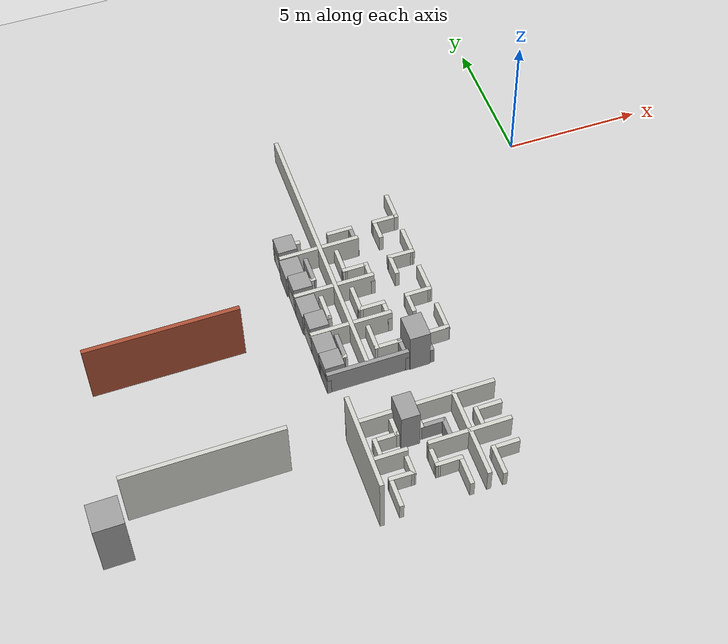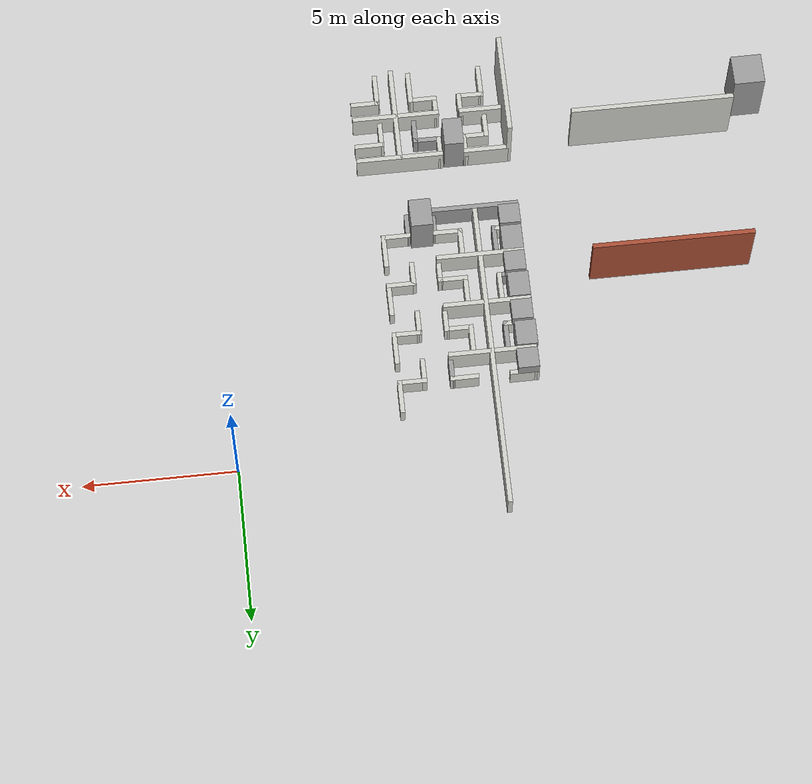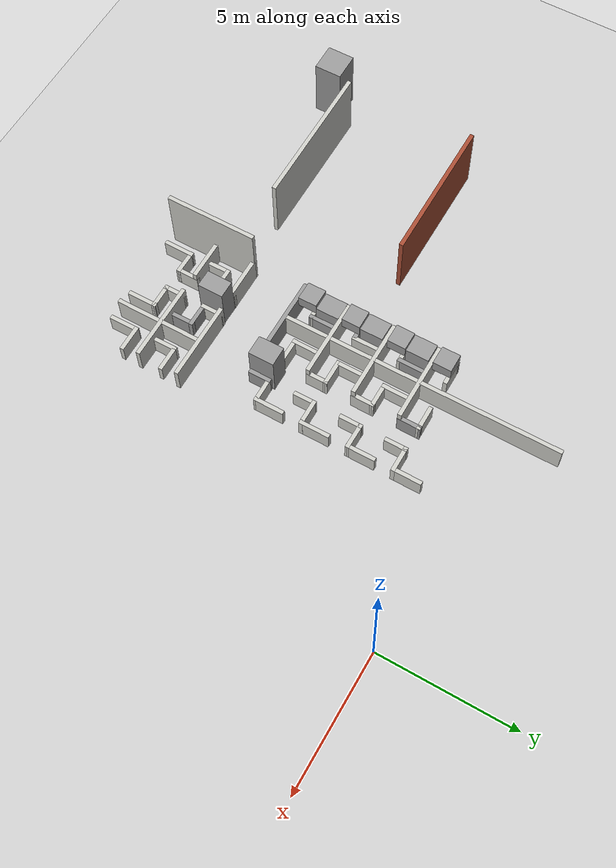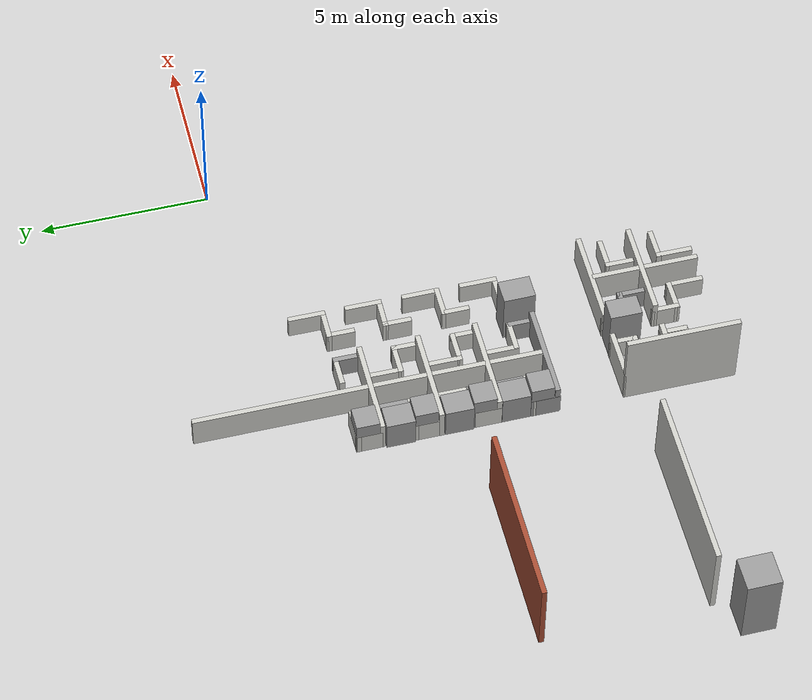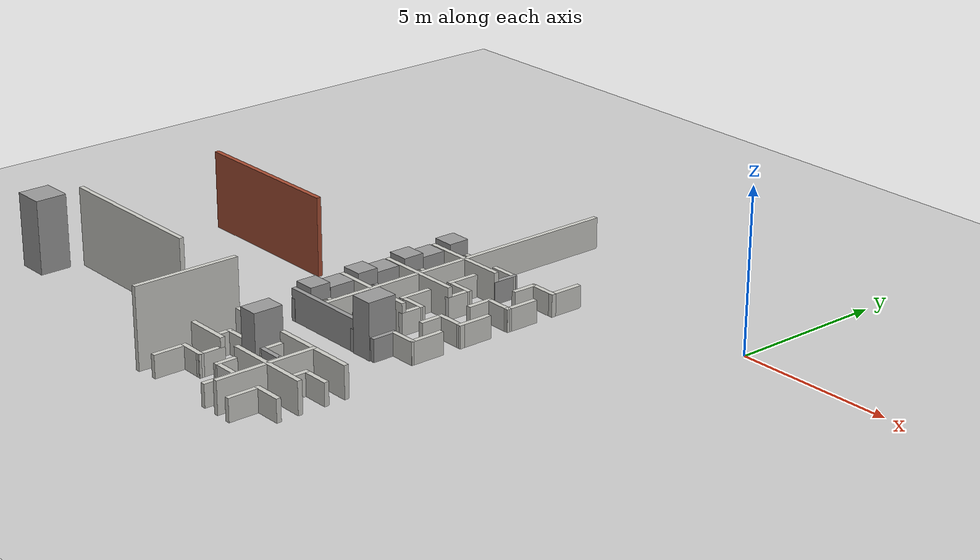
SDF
<sdf version="1.7">
 <world name="default">
  <model name="ground_plane">
   <static>1</static>
   <link name="link">
    <collision name="collision">
     <geometry><plane><normal>0 0 1</normal><size>100 100</size></plane></geometry>
     <surface><friction><ode><mu>100</mu><mu2>50</mu2></ode></friction></surface>
    </collision>
    <visual name="visual">
     <cast_shadows>0</cast_shadows>
     <geometry><plane><normal>0 0 1</normal><size>100 100</size></plane></geometry>
     <material>
      <script><uri>file://media/materials/scripts/gazebo.material</uri><name>Gazebo/Grey</name></script>
     </material>
    </visual>
   </link>
  </model>
  <model name="batclab">
   <pose>-2.42536 -0.386876 0 0 -0 0</pose>
   <link name="Wall_102">
    <collision name="Wall_102_Collision">
     <geometry><box><size>2.865 0.15 1</size></box></geometry>
     <pose>0 0 0.5 0 -0 0</pose>
    </collision>
    <visual name="Wall_102_Visual">
     <pose>0 0 0.5 0 -0 0</pose>
     <geometry><box><size>2.865 0.15 1</size></box></geometry>
     <material>
      <script><uri>file://media/materials/scripts/gazebo.material</uri><name>Gazebo/Grey</name></script>
      <ambient>1 1 1 1</ambient>
     </material>
     <meta><layer>0</layer></meta>
    </visual>
    <pose>-6.02592 -7.66961 0 0 -0 0</pose>
   </link>
   <link name="Wall_108">
    <collision name="Wall_108_Collision">
     <geometry><box><size>1.11648 0.15 0.7</size></box></geometry>
     <pose>0 0 0.35 0 -0 0</pose>
    </collision>
    <visual name="Wall_108_Visual">
     <pose>0 0 0.35 0 -0 0</pose>
     <geometry><box><size>1.11648 0.15 0.7</size></box></geometry>
     <material>
      <script><uri>file://media/materials/scripts/gazebo.material</uri><name>Gazebo/CeilingTiled</name></script>
      <ambient>1 1 1 1</ambient>
     </material>
     <meta><layer>0</layer></meta>
    </visual>
    <pose>-6.58842 -4.81161 0 0 -0 -1.5708</pose>
   </link>
   <link name="Wall_109">
    <collision name="Wall_109_Collision">
     <geometry><box><size>0.954505 0.15 0.7</size></box></geometry>
     <pose>0 0 0.35 0 -0 0</pose>
    </collision>
    <visual name="Wall_109_Visual">
     <pose>0 0 0.35 0 -0 0</pose>
     <geometry><box><size>0.954505 0.15 0.7</size></box></geometry>
     <material>
      <script><uri>file://media/materials/scripts/gazebo.material</uri><name>Gazebo/Grey</name></script>
      <ambient>1 1 1 1</ambient>
     </material>
     <meta><layer>0</layer></meta>
    </visual>
    <pose>-6.99092 -5.29461 0 0 -0 3.14159</pose>
   </link>
   <link name="Wall_110">
    <collision name="Wall_110_Collision">
     <geometry><box><size>0.819178 0.15 0.7</size></box></geometry>
     <pose>0 0 0.35 0 -0 0</pose>
    </collision>
    <visual name="Wall_110_Visual">
     <pose>0 0 0.35 0 -0 0</pose>
     <geometry><box><size>0.819178 0.15 0.7</size></box></geometry>
     <material>
      <script><uri>file://media/materials/scripts/gazebo.material</uri><name>Gazebo/CeilingTiled</name></script>
      <ambient>1 1 1 1</ambient>
     </material>
     <meta><layer>0</layer></meta>
    </visual>
    <pose>-7.39542 -5.62911 0 0 -0 -1.57678</pose>
   </link>
   <link name="Wall_112">
    <collision name="Wall_112_Collision">
     <geometry><box><size>1.1312 0.15 0.7</size></box></geometry>
     <pose>0 0 0.35 0 -0 0</pose>
    </collision>
    <visual name="Wall_112_Visual">
     <pose>0 0 0.35 0 -0 0</pose>
     <geometry><box><size>1.1312 0.15 0.7</size></box></geometry>
     <material>
      <script><uri>file://media/materials/scripts/gazebo.material</uri><name>Gazebo/CeilingTiled</name></script>
      <ambient>1 1 1 1</ambient>
     </material>
     <meta><layer>0</layer></meta>
    </visual>
    <pose>-5.47742 -4.81511 0 0 -0 -1.57487</pose>
   </link>
   <link name="Wall_113">
    <collision name="Wall_113_Collision">
     <geometry><box><size>0.965792 0.15 0.7</size></box></geometry>
     <pose>0 0 0.35 0 -0 0</pose>
    </collision>
    <visual name="Wall_113_Visual">
     <pose>0 0 0.35 0 -0 0</pose>
     <geometry><box><size>0.965792 0.15 0.7</size></box></geometry>
     <material>
      <script><uri>file://media/materials/scripts/gazebo.material</uri><name>Gazebo/CeilingTiled</name></script>
      <ambient>1 1 1 1</ambient>
     </material>
     <meta><layer>0</layer></meta>
    </visual>
    <pose>-5.07142 -5.30561 0 0 -0 0</pose>
   </link>
   <link name="Wall_114">
    <collision name="Wall_114_Collision">
     <geometry><box><size>0.815451 0.15 0.7</size></box></geometry>
     <pose>0 0 0.35 0 -0 0</pose>
    </collision>
    <visual name="Wall_114_Visual">
     <pose>0 0 0.35 0 -0 0</pose>
     <geometry><box><size>0.815451 0.15 0.7</size></box></geometry>
     <material>
      <script><uri>file://media/materials/scripts/gazebo.material</uri><name>Gazebo/CeilingTiled</name></script>
      <ambient>1 1 1 1</ambient>
     </material>
     <meta><layer>0</layer></meta>
    </visual>
    <pose>-4.66542 -5.63861 0 0 -0 -1.5768</pose>
   </link>
   <link name="Wall_116">
    <collision name="Wall_116_Collision">
     <geometry><box><size>1.085 0.15 0.7</size></box></geometry>
     <pose>0 0 0.35 0 -0 0</pose>
    </collision>
    <visual name="Wall_116_Visual">
     <pose>0 0 0.35 0 -0 0</pose>
     <geometry><box><size>1.085 0.15 0.7</size></box></geometry>
     <material>
      <script><uri>file://media/materials/scripts/gazebo.material</uri><name>Gazebo/Grey</name></script>
      <ambient>1 1 1 1</ambient>
     </material>
     <meta><layer>0</layer></meta>
    </visual>
    <pose>-6.59742 -6.49711 0 0 -0 -1.5708</pose>
   </link>
   <link name="Wall_117">
    <collision name="Wall_117_Collision">
     <geometry><box><size>0.954006 0.15 0.7</size></box></geometry>
     <pose>0 0 0.35 0 -0 0</pose>
    </collision>
    <visual name="Wall_117_Visual">
     <pose>0 0 0.35 0 -0 0</pose>
     <geometry><box><size>0.954006 0.15 0.7</size></box></geometry>
     <material>
      <script><uri>file://media/materials/scripts/gazebo.material</uri><name>Gazebo/CeilingTiled</name></script>
      <ambient>1 1 1 1</ambient>
     </material>
     <meta><layer>0</layer></meta>
    </visual>
    <pose>-6.99942 -6.96311 0 0 -0 3.13786</pose>
   </link>
   <link name="Wall_118">
    <collision name="Wall_118_Collision">
     <geometry><box><size>0.866762 0.15 0.7</size></box></geometry>
     <pose>0 0 0.35 0 -0 0</pose>
    </collision>
    <visual name="Wall_118_Visual">
     <pose>0 0 0.35 0 -0 0</pose>
     <geometry><box><size>0.866762 0.15 0.7</size></box></geometry>
     <material>
      <script><uri>file://media/materials/scripts/gazebo.material</uri><name>Gazebo/Grey</name></script>
      <ambient>1 1 1 1</ambient>
     </material>
     <meta><layer>0</layer></meta>
    </visual>
    <pose>-7.40142 -7.32011 0 0 -0 -1.5708</pose>
   </link>
   <link name="Wall_12">
    <collision name="Wall_12_Collision">
     <geometry><box><size>5.3301 0.15 2.5</size></box></geometry>
     <pose>0 0 1.25 0 -0 0</pose>
    </collision>
    <visual name="Wall_12_Visual">
     <pose>0 0 1.25 0 -0 0</pose>
     <geometry><box><size>5.3301 0.15 2.5</size></box></geometry>
     <material>
      <script><uri>file://media/materials/scripts/gazebo.material</uri><name>Gazebo/CeilingTiled</name></script>
      <ambient>1 1 1 1</ambient>
     </material>
     <meta><layer>0</layer></meta>
    </visual>
    <pose>-12.1199 -10.0685 0 0 -0 0.001104</pose>
   </link>
   <link name="Wall_120">
    <collision name="Wall_120_Collision">
     <geometry><box><size>1.09902 0.15 0.7</size></box></geometry>
     <pose>0 0 0.35 0 -0 0</pose>
    </collision>
    <visual name="Wall_120_Visual">
     <pose>0 0 0.35 0 -0 0</pose>
     <geometry><box><size>1.09902 0.15 0.7</size></box></geometry>
     <material>
      <script><uri>file://media/materials/scripts/gazebo.material</uri><name>Gazebo/CeilingTiled</name></script>
      <ambient>1 1 1 1</ambient>
     </material>
     <meta><layer>0</layer></meta>
    </visual>
    <pose>-5.48042 -6.50711 0 0 -0 -1.57712</pose>
   </link>
   <link name="Wall_121">
    <collision name="Wall_121_Collision">
     <geometry><box><size>0.968799 0.15 0.7</size></box></geometry>
     <pose>0 0 0.35 0 -0 0</pose>
    </collision>
    <visual name="Wall_121_Visual">
     <pose>0 0 0.35 0 -0 0</pose>
     <geometry><box><size>0.968799 0.15 0.7</size></box></geometry>
     <material>
      <script><uri>file://media/materials/scripts/gazebo.material</uri><name>Gazebo/CeilingTiled</name></script>
      <ambient>1 1 1 1</ambient>
     </material>
     <meta><layer>0</layer></meta>
    </visual>
    <pose>-5.07392 -6.98461 0 0 -0 -0.007326</pose>
   </link>
   <link name="Wall_122">
    <collision name="Wall_122_Collision">
     <geometry><box><size>0.837919 0.15 0.7</size></box></geometry>
     <pose>0 0 0.35 0 -0 0</pose>
    </collision>
    <visual name="Wall_122_Visual">
     <pose>0 0 0.35 0 -0 0</pose>
     <geometry><box><size>0.837919 0.15 0.7</size></box></geometry>
     <material>
      <script><uri>file://media/materials/scripts/gazebo.material</uri><name>Gazebo/Grey</name></script>
      <ambient>1 1 1 1</ambient>
     </material>
     <meta><layer>0</layer></meta>
    </visual>
    <pose>-4.66442 -7.33161 0 0 -0 -1.5708</pose>
   </link>
   <link name="Wall_124">
    <collision name="Wall_124_Collision">
     <geometry><box><size>1.1146 0.15 0.7</size></box></geometry>
     <pose>0 0 0.35 0 -0 0</pose>
    </collision>
    <visual name="Wall_124_Visual">
     <pose>0 0 0.35 0 -0 0</pose>
     <geometry><box><size>1.1146 0.15 0.7</size></box></geometry>
     <material>
      <script><uri>file://media/materials/scripts/gazebo.material</uri><name>Gazebo/CeilingTiled</name></script>
      <ambient>1 1 1 1</ambient>
     </material>
     <meta><layer>0</layer></meta>
    </visual>
    <pose>-2.97542 -6.50311 0 0 -0 -1.5708</pose>
   </link>
   <link name="Wall_125">
    <collision name="Wall_125_Collision">
     <geometry><box><size>0.964006 0.15 0.7</size></box></geometry>
     <pose>0 0 0.35 0 -0 0</pose>
    </collision>
    <visual name="Wall_125_Visual">
     <pose>0 0 0.35 0 -0 0</pose>
     <geometry><box><size>0.964006 0.15 0.7</size></box></geometry>
     <material>
      <script><uri>file://media/materials/scripts/gazebo.material</uri><name>Gazebo/CeilingTiled</name></script>
      <ambient>1 1 1 1</ambient>
     </material>
     <meta><layer>0</layer></meta>
    </visual>
    <pose>-3.38242 -6.98711 0 0 -0 -3.13791</pose>
   </link>
   <link name="Wall_126">
    <collision name="Wall_126_Collision">
     <geometry><box><size>0.820149 0.15 0.7</size></box></geometry>
     <pose>0 0 0.35 0 -0 0</pose>
    </collision>
    <visual name="Wall_126_Visual">
     <pose>0 0 0.35 0 -0 0</pose>
     <geometry><box><size>0.820149 0.15 0.7</size></box></geometry>
     <material>
      <script><uri>file://media/materials/scripts/gazebo.material</uri><name>Gazebo/Grey</name></script>
      <ambient>1 1 1 1</ambient>
     </material>
     <meta><layer>0</layer></meta>
    </visual>
    <pose>-3.78942 -7.32361 0 0 -0 -1.5708</pose>
   </link>
   <link name="Wall_132">
    <collision name="Wall_132_Collision">
     <geometry><box><size>1.12501 0.15 0.7</size></box></geometry>
     <pose>0 0 0.35 0 -0 0</pose>
    </collision>
    <visual name="Wall_132_Visual">
     <pose>0 0 0.35 0 -0 0</pose>
     <geometry><box><size>1.12501 0.15 0.7</size></box></geometry>
     <material>
      <script><uri>file://media/materials/scripts/gazebo.material</uri><name>Gazebo/CeilingTiled</name></script>
      <ambient>1 1 1 1</ambient>
     </material>
     <meta><layer>0</layer></meta>
    </visual>
    <pose>-2.97542 -4.78311 0 0 -0 -1.56669</pose>
   </link>
   <link name="Wall_133">
    <collision name="Wall_133_Collision">
     <geometry><box><size>0.970346 0.15 0.7</size></box></geometry>
     <pose>0 0 0.35 0 -0 0</pose>
    </collision>
    <visual name="Wall_133_Visual">
     <pose>0 0 0.35 0 -0 0</pose>
     <geometry><box><size>0.970346 0.15 0.7</size></box></geometry>
     <material>
      <script><uri>file://media/materials/scripts/gazebo.material</uri><name>Gazebo/CeilingTiled</name></script>
      <ambient>1 1 1 1</ambient>
     </material>
     <meta><layer>0</layer></meta>
    </visual>
    <pose>-3.38342 -5.27211 0 0 -0 -3.13793</pose>
   </link>
   <link name="Wall_134">
    <collision name="Wall_134_Collision">
     <geometry><box><size>0.827153 0.15 0.7</size></box></geometry>
     <pose>0 0 0.35 0 -0 0</pose>
    </collision>
    <visual name="Wall_134_Visual">
     <pose>0 0 0.35 0 -0 0</pose>
     <geometry><box><size>0.827153 0.15 0.7</size></box></geometry>
     <material>
      <script><uri>file://media/materials/scripts/gazebo.material</uri><name>Gazebo/CeilingTiled</name></script>
      <ambient>1 1 1 1</ambient>
     </material>
     <meta><layer>0</layer></meta>
    </visual>
    <pose>-3.79342 -5.61211 0 0 -0 -1.5708</pose>
   </link>
   <link name="Wall_140">
    <collision name="Wall_140_Collision">
     <geometry><box><size>1.09101 0.15 0.7</size></box></geometry>
     <pose>0 0 0.35 0 -0 0</pose>
    </collision>
    <visual name="Wall_140_Visual">
     <pose>0 0 0.35 0 -0 0</pose>
     <geometry><box><size>1.09101 0.15 0.7</size></box></geometry>
     <material>
      <script><uri>file://media/materials/scripts/gazebo.material</uri><name>Gazebo/CeilingTiled</name></script>
      <ambient>1 1 1 1</ambient>
     </material>
     <meta><layer>0</layer></meta>
    </visual>
    <pose>-2.97792 -3.06811 0 0 -0 -1.57398</pose>
   </link>
   <link name="Wall_141">
    <collision name="Wall_141_Collision">
     <geometry><box><size>0.963985 0.15 0.7</size></box></geometry>
     <pose>0 0 0.35 0 -0 0</pose>
    </collision>
    <visual name="Wall_141_Visual">
     <pose>0 0 0.35 0 -0 0</pose>
     <geometry><box><size>0.963985 0.15 0.7</size></box></geometry>
     <material>
      <script><uri>file://media/materials/scripts/gazebo.material</uri><name>Gazebo/CeilingTiled</name></script>
      <ambient>1 1 1 1</ambient>
     </material>
     <meta><layer>0</layer></meta>
    </visual>
    <pose>-3.38642 -3.53361 0 0 -0 3.12931</pose>
   </link>
   <link name="Wall_142">
    <collision name="Wall_142_Collision">
     <geometry><box><size>0.849856 0.15 0.7</size></box></geometry>
     <pose>0 0 0.35 0 -0 0</pose>
    </collision>
    <visual name="Wall_142_Visual">
     <pose>0 0 0.35 0 -0 0</pose>
     <geometry><box><size>0.849856 0.15 0.7</size></box></geometry>
     <material>
      <script><uri>file://media/materials/scripts/gazebo.material</uri><name>Gazebo/CeilingTiled</name></script>
      <ambient>1 1 1 1</ambient>
     </material>
     <meta><layer>0</layer></meta>
    </visual>
    <pose>-3.79542 -3.87861 0 0 -0 -1.57651</pose>
   </link>
   <link name="Wall_15">
    <collision name="Wall_15_Collision">
     <geometry><box><size>5.25 0.15 2.5</size></box></geometry>
     <pose>0 0 1.25 0 -0 0</pose>
    </collision>
    <visual name="Wall_15_Visual">
     <pose>0 0 1.25 0 -0 0</pose>
     <geometry><box><size>5.25 0.15 2.5</size></box></geometry>
     <material>
      <script><uri>file://media/materials/scripts/gazebo.material</uri><name>Gazebo/Bricks</name></script>
      <ambient>1 1 1 1</ambient>
     </material>
     <meta><layer>0</layer></meta>
    </visual>
    <pose>-12.1791 -5.1944 0 0 -0 0</pose>
   </link>
   <link name="Wall_182">
    <collision name="Wall_182_Collision">
     <geometry><box><size>1.10489 0.15 0.7</size></box></geometry>
     <pose>0 0 0.35 0 -0 0</pose>
    </collision>
    <visual name="Wall_182_Visual">
     <pose>0 0 0.35 0 -0 0</pose>
     <geometry><box><size>1.10489 0.15 0.7</size></box></geometry>
     <material>
      <script><uri>file://media/materials/scripts/gazebo.material</uri><name>Gazebo/CeilingTiled</name></script>
      <ambient>1 1 1 1</ambient>
     </material>
     <meta><layer>0</layer></meta>
    </visual>
    <pose>-2.98042 -1.38761 0 0 -0 -1.57499</pose>
   </link>
   <link name="Wall_183">
    <collision name="Wall_183_Collision">
     <geometry><box><size>0.958265 0.15 0.7</size></box></geometry>
     <pose>0 0 0.35 0 -0 0</pose>
    </collision>
    <visual name="Wall_183_Visual">
     <pose>0 0 0.35 0 -0 0</pose>
     <geometry><box><size>0.958265 0.15 0.7</size></box></geometry>
     <material>
      <script><uri>file://media/materials/scripts/gazebo.material</uri><name>Gazebo/CeilingTiled</name></script>
      <ambient>1 1 1 1</ambient>
     </material>
     <meta><layer>0</layer></meta>
    </visual>
    <pose>-3.38642 -1.86261 0 0 -0 3.13664</pose>
   </link>
   <link name="Wall_184">
    <collision name="Wall_184_Collision">
     <geometry><box><size>0.834638 0.15 0.7</size></box></geometry>
     <pose>0 0 0.35 0 -0 0</pose>
    </collision>
    <visual name="Wall_184_Visual">
     <pose>0 0 0.35 0 -0 0</pose>
     <geometry><box><size>0.834638 0.15 0.7</size></box></geometry>
     <material>
      <script><uri>file://media/materials/scripts/gazebo.material</uri><name>Gazebo/CeilingTiled</name></script>
      <ambient>1 1 1 1</ambient>
     </material>
     <meta><layer>0</layer></meta>
    </visual>
    <pose>-3.79042 -2.20261 0 0 -0 -1.5708</pose>
   </link>
   <link name="Wall_338">
    <collision name="Wall_338_Collision">
     <geometry><box><size>3.34011 0.15 2.5</size></box></geometry>
     <pose>0 0 1.25 0 -0 0</pose>
    </collision>
    <visual name="Wall_338_Visual">
     <pose>0 0 1.25 0 -0 0</pose>
     <geometry><box><size>3.34011 0.15 2.5</size></box></geometry>
     <material>
      <script><uri>file://media/materials/scripts/gazebo.material</uri><name>Gazebo/CeilingTiled</name></script>
      <ambient>1 1 1 1</ambient>
     </material>
     <meta><layer>0</layer></meta>
    </visual>
    <pose>-7.38905 -11.3066 0 0 -0 -1.57182</pose>
   </link>
   <link name="Wall_340">
    <collision name="Wall_340_Collision">
     <geometry><box><size>1.55865 0.15 1</size></box></geometry>
     <pose>0 0 0.5 0 -0 0</pose>
    </collision>
    <visual name="Wall_340_Visual">
     <pose>0 0 0.5 0 -0 0</pose>
     <geometry><box><size>1.55865 0.15 1</size></box></geometry>
     <material>
      <script><uri>file://media/materials/scripts/gazebo.material</uri><name>Gazebo/CeilingTiled</name></script>
      <ambient>1 1 1 1</ambient>
     </material>
     <meta><layer>0</layer></meta>
    </visual>
    <pose>-6.68292 -9.70861 0 0 -0 0.004258</pose>
   </link>
   <link name="Wall_341">
    <collision name="Wall_341_Collision">
     <geometry><box><size>0.824693 0.15 0.7</size></box></geometry>
     <pose>0 0 0.35 0 -0 0</pose>
    </collision>
    <visual name="Wall_341_Visual">
     <pose>0 0 0.35 0 -0 0</pose>
     <geometry><box><size>0.824693 0.15 0.7</size></box></geometry>
     <material>
      <script><uri>file://media/materials/scripts/gazebo.material</uri><name>Gazebo/CeilingTiled</name></script>
      <ambient>1 1 1 1</ambient>
     </material>
     <meta><layer>0</layer></meta>
    </visual>
    <pose>-5.98142 -10.0426 0 0 -0 -1.5797</pose>
   </link>
   <link name="Wall_342">
    <collision name="Wall_342_Collision">
     <geometry><box><size>0.899019 0.15 0.7</size></box></geometry>
     <pose>0 0 0.35 0 -0 0</pose>
    </collision>
    <visual name="Wall_342_Visual">
     <pose>0 0 0.35 0 -0 0</pose>
     <geometry><box><size>0.899019 0.15 0.7</size></box></geometry>
     <material>
      <script><uri>file://media/materials/scripts/gazebo.material</uri><name>Gazebo/CeilingTiled</name></script>
      <ambient>1 1 1 1</ambient>
     </material>
     <meta><layer>0</layer></meta>
    </visual>
    <pose>-6.35892 -10.3796 0 0 -0 3.14159</pose>
   </link>
   <link name="Wall_343">
    <collision name="Wall_343_Collision">
     <geometry><box><size>0.927774 0.15 0.7</size></box></geometry>
     <pose>0 0 0.35 0 -0 0</pose>
    </collision>
    <visual name="Wall_343_Visual">
     <pose>0 0 0.35 0 -0 0</pose>
     <geometry><box><size>0.927774 0.15 0.7</size></box></geometry>
     <material>
      <script><uri>file://media/materials/scripts/gazebo.material</uri><name>Gazebo/CeilingTiled</name></script>
      <ambient>1 1 1 1</ambient>
     </material>
     <meta><layer>0</layer></meta>
    </visual>
    <pose>-6.73342 -10.7686 0 0 -0 -1.5708</pose>
   </link>
   <link name="Wall_345">
    <collision name="Wall_345_Collision">
     <geometry><box><size>1.51654 0.15 1</size></box></geometry>
     <pose>0 0 0.5 0 -0 0</pose>
    </collision>
    <visual name="Wall_345_Visual">
     <pose>0 0 0.5 0 -0 0</pose>
     <geometry><box><size>1.51654 0.15 1</size></box></geometry>
     <material>
      <script><uri>file://media/materials/scripts/gazebo.material</uri><name>Gazebo/CeilingTiled</name></script>
      <ambient>1 1 1 1</ambient>
     </material>
     <meta><layer>0</layer></meta>
    </visual>
    <pose>-6.66192 -11.1806 0 0 -0 0</pose>
   </link>
   <link name="Wall_346">
    <collision name="Wall_346_Collision">
     <geometry><box><size>0.847539 0.15 0.7</size></box></geometry>
     <pose>0 0 0.35 0 -0 0</pose>
    </collision>
    <visual name="Wall_346_Visual">
     <pose>0 0 0.35 0 -0 0</pose>
     <geometry><box><size>0.847539 0.15 0.7</size></box></geometry>
     <material>
      <script><uri>file://media/materials/scripts/gazebo.material</uri><name>Gazebo/CeilingTiled</name></script>
      <ambient>1 1 1 1</ambient>
     </material>
     <meta><layer>0</layer></meta>
    </visual>
    <pose>-5.97842 -11.5291 0 0 -0 -1.5708</pose>
   </link>
   <link name="Wall_347">
    <collision name="Wall_347_Collision">
     <geometry><box><size>0.893301 0.15 0.7</size></box></geometry>
     <pose>0 0 0.35 0 -0 0</pose>
    </collision>
    <visual name="Wall_347_Visual">
     <pose>0 0 0.35 0 -0 0</pose>
     <geometry><box><size>0.893301 0.15 0.7</size></box></geometry>
     <material>
      <script><uri>file://media/materials/scripts/gazebo.material</uri><name>Gazebo/CeilingTiled</name></script>
      <ambient>1 1 1 1</ambient>
     </material>
     <meta><layer>0</layer></meta>
    </visual>
    <pose>-6.34992 -11.8716 0 0 -0 3.12544</pose>
   </link>
   <link name="Wall_348">
    <collision name="Wall_348_Collision">
     <geometry><box><size>1.11031 0.15 0.7</size></box></geometry>
     <pose>0 0 0.35 0 -0 0</pose>
    </collision>
    <visual name="Wall_348_Visual">
     <pose>0 0 0.35 0 -0 0</pose>
     <geometry><box><size>1.11031 0.15 0.7</size></box></geometry>
     <material>
      <script><uri>file://media/materials/scripts/gazebo.material</uri><name>Gazebo/CeilingTiled</name></script>
      <ambient>1 1 1 1</ambient>
     </material>
     <meta><layer>0</layer></meta>
    </visual>
    <pose>-6.72142 -12.3461 0 0 -0 -1.5708</pose>
   </link>
   <link name="Wall_350">
    <collision name="Wall_350_Collision">
     <geometry><box><size>2.865 0.15 1</size></box></geometry>
     <pose>0 0 0.5 0 -0 0</pose>
    </collision>
    <visual name="Wall_350_Visual">
     <pose>0 0 0.5 0 -0 0</pose>
     <geometry><box><size>2.865 0.15 1</size></box></geometry>
     <material>
      <script><uri>file://media/materials/scripts/gazebo.material</uri><name>Gazebo/CeilingTiled</name></script>
      <ambient>1 1 1 1</ambient>
     </material>
     <meta><layer>0</layer></meta>
    </visual>
    <pose>-3.79392 -9.68861 0 0 -0 0</pose>
   </link>
   <link name="Wall_352">
    <collision name="Wall_352_Collision">
     <geometry><box><size>2.865 0.15 1</size></box></geometry>
     <pose>0 0 0.5 0 -0 0</pose>
    </collision>
    <visual name="Wall_352_Visual">
     <pose>0 0 0.5 0 -0 0</pose>
     <geometry><box><size>2.865 0.15 1</size></box></geometry>
     <material>
      <script><uri>file://media/materials/scripts/gazebo.material</uri><name>Gazebo/CeilingTiled</name></script>
      <ambient>1 1 1 1</ambient>
     </material>
     <meta><layer>0</layer></meta>
    </visual>
    <pose>-3.80392 -11.1966 0 0 -0 0</pose>
   </link>
   <link name="Wall_372">
    <collision name="Wall_372_Collision">
     <geometry><box><size>3.25 0.15 1</size></box></geometry>
     <pose>0 0 0.5 0 -0 0</pose>
    </collision>
    <visual name="Wall_372_Visual">
     <pose>0 0 0.5 0 -0 0</pose>
     <geometry><box><size>3.25 0.15 1</size></box></geometry>
     <material>
      <script><uri>file://media/materials/scripts/gazebo.material</uri><name>Gazebo/CeilingTiled</name></script>
      <ambient>1 1 1 1</ambient>
     </material>
     <meta><layer>0</layer></meta>
    </visual>
    <pose>-3.79442 -11.2526 0 0 -0 -1.5708</pose>
   </link>
   <link name="Wall_374">
    <collision name="Wall_374_Collision">
     <geometry><box><size>0.837834 0.15 0.7</size></box></geometry>
     <pose>0 0 0.35 0 -0 0</pose>
    </collision>
    <visual name="Wall_374_Visual">
     <pose>0 0 0.35 0 -0 0</pose>
     <geometry><box><size>0.837834 0.15 0.7</size></box></geometry>
     <material>
      <script><uri>file://media/materials/scripts/gazebo.material</uri><name>Gazebo/CeilingTiled</name></script>
      <ambient>1 1 1 1</ambient>
     </material>
     <meta><layer>0</layer></meta>
    </visual>
    <pose>-5.15042 -10.0326 0 0 -0 -1.56789</pose>
   </link>
   <link name="Wall_375">
    <collision name="Wall_375_Collision">
     <geometry><box><size>0.918219 0.15 0.7</size></box></geometry>
     <pose>0 0 0.35 0 -0 0</pose>
    </collision>
    <visual name="Wall_375_Visual">
     <pose>0 0 0.35 0 -0 0</pose>
     <geometry><box><size>0.918219 0.15 0.7</size></box></geometry>
     <material>
      <script><uri>file://media/materials/scripts/gazebo.material</uri><name>Gazebo/Grey</name></script>
      <ambient>1 1 1 1</ambient>
     </material>
     <meta><layer>0</layer></meta>
    </visual>
    <pose>-4.76542 -10.3781 0 0 -0 -0.003906</pose>
   </link>
   <link name="Wall_376">
    <collision name="Wall_376_Collision">
     <geometry><box><size>0.90515 0.15 0.7</size></box></geometry>
     <pose>0 0 0.35 0 -0 0</pose>
    </collision>
    <visual name="Wall_376_Visual">
     <pose>0 0 0.35 0 -0 0</pose>
     <geometry><box><size>0.90515 0.15 0.7</size></box></geometry>
     <material>
      <script><uri>file://media/materials/scripts/gazebo.material</uri><name>Gazebo/Grey</name></script>
      <ambient>1 1 1 1</ambient>
     </material>
     <meta><layer>0</layer></meta>
    </visual>
    <pose>-4.38292 -10.7571 0 0 -0 -1.57477</pose>
   </link>
   <link name="Wall_379">
    <collision name="Wall_379_Collision">
     <geometry><box><size>0.967261 0.15 0.7</size></box></geometry>
     <pose>0 0 0.35 0 -0 0</pose>
    </collision>
    <visual name="Wall_379_Visual">
     <pose>0 0 0.35 0 -0 0</pose>
     <geometry><box><size>0.967261 0.15 0.7</size></box></geometry>
     <material>
      <script><uri>file://media/materials/scripts/gazebo.material</uri><name>Gazebo/CeilingTiled</name></script>
      <ambient>1 1 1 1</ambient>
     </material>
     <meta><layer>0</layer></meta>
    </visual>
    <pose>-2.84792 -10.3491 0 0 -0 -3.13792</pose>
   </link>
   <link name="Wall_380">
    <collision name="Wall_380_Collision">
     <geometry><box><size>0.908419 0.15 0.7</size></box></geometry>
     <pose>0 0 0.35 0 -0 0</pose>
    </collision>
    <visual name="Wall_380_Visual">
     <pose>0 0 0.35 0 -0 0</pose>
     <geometry><box><size>0.908419 0.15 0.7</size></box></geometry>
     <material>
      <script><uri>file://media/materials/scripts/gazebo.material</uri><name>Gazebo/CeilingTiled</name></script>
      <ambient>1 1 1 1</ambient>
     </material>
     <meta><layer>0</layer></meta>
    </visual>
    <pose>-3.25792 -10.7296 0 0 -0 -1.57475</pose>
   </link>
   <link name="Wall_382">
    <collision name="Wall_382_Collision">
     <geometry><box><size>0.829019 0.15 0.7</size></box></geometry>
     <pose>0 0 0.35 0 -0 0</pose>
    </collision>
    <visual name="Wall_382_Visual">
     <pose>0 0 0.35 0 -0 0</pose>
     <geometry><box><size>0.829019 0.15 0.7</size></box></geometry>
     <material>
      <script><uri>file://media/materials/scripts/gazebo.material</uri><name>Gazebo/CeilingTiled</name></script>
      <ambient>1 1 1 1</ambient>
     </material>
     <meta><layer>0</layer></meta>
    </visual>
    <pose>-5.16042 -11.5361 0 0 -0 -1.56785</pose>
   </link>
   <link name="Wall_383">
    <collision name="Wall_383_Collision">
     <geometry><box><size>0.941109 0.15 0.7</size></box></geometry>
     <pose>0 0 0.35 0 -0 0</pose>
    </collision>
    <visual name="Wall_383_Visual">
     <pose>0 0 0.35 0 -0 0</pose>
     <geometry><box><size>0.941109 0.15 0.7</size></box></geometry>
     <material>
      <script><uri>file://media/materials/scripts/gazebo.material</uri><name>Gazebo/CeilingTiled</name></script>
      <ambient>1 1 1 1</ambient>
     </material>
     <meta><layer>0</layer></meta>
    </visual>
    <pose>-4.76392 -11.8726 0 0 -0 0.007585</pose>
   </link>
   <link name="Wall_384">
    <collision name="Wall_384_Collision">
     <geometry><box><size>1.09148 0.15 0.7</size></box></geometry>
     <pose>0 0 0.35 0 -0 0</pose>
    </collision>
    <visual name="Wall_384_Visual">
     <pose>0 0 0.35 0 -0 0</pose>
     <geometry><box><size>1.09148 0.15 0.7</size></box></geometry>
     <material>
      <script><uri>file://media/materials/scripts/gazebo.material</uri><name>Gazebo/CeilingTiled</name></script>
      <ambient>1 1 1 1</ambient>
     </material>
     <meta><layer>0</layer></meta>
    </visual>
    <pose>-4.36842 -12.3401 0 0 -0 -1.5708</pose>
   </link>
   <link name="Wall_387">
    <collision name="Wall_387_Collision">
     <geometry><box><size>0.960716 0.15 0.7</size></box></geometry>
     <pose>0 0 0.35 0 -0 0</pose>
    </collision>
    <visual name="Wall_387_Visual">
     <pose>0 0 0.35 0 -0 0</pose>
     <geometry><box><size>0.960716 0.15 0.7</size></box></geometry>
     <material>
      <script><uri>file://media/materials/scripts/gazebo.material</uri><name>Gazebo/CeilingTiled</name></script>
      <ambient>1 1 1 1</ambient>
     </material>
     <meta><layer>0</layer></meta>
    </visual>
    <pose>-2.85142 -11.8841 0 0 -0 -3.13789</pose>
   </link>
   <link name="Wall_388">
    <collision name="Wall_388_Collision">
     <geometry><box><size>1.08167 0.15 0.7</size></box></geometry>
     <pose>0 0 0.35 0 -0 0</pose>
    </collision>
    <visual name="Wall_388_Visual">
     <pose>0 0 0.35 0 -0 0</pose>
     <geometry><box><size>1.08167 0.15 0.7</size></box></geometry>
     <material>
      <script><uri>file://media/materials/scripts/gazebo.material</uri><name>Gazebo/CeilingTiled</name></script>
      <ambient>1 1 1 1</ambient>
     </material>
     <meta><layer>0</layer></meta>
    </visual>
    <pose>-3.25642 -12.3516 0 0 -0 -1.5708</pose>
   </link>
   <link name="Wall_63">
    <collision name="Wall_63_Collision">
     <geometry><box><size>10.25 0.15 1</size></box></geometry>
     <pose>0 0 0.5 0 -0 0</pose>
    </collision>
    <visual name="Wall_63_Visual">
     <pose>0 0 0.5 0 -0 0</pose>
     <geometry><box><size>10.25 0.15 1</size></box></geometry>
     <material>
      <script><uri>file://media/materials/scripts/gazebo.material</uri><name>Gazebo/CeilingTiled</name></script>
      <ambient>1 1 1 1</ambient>
     </material>
     <meta><layer>0</layer></meta>
    </visual>
    <pose>-6.03242 -2.48661 0 0 -0 -1.5708</pose>
   </link>
   <link name="Wall_72">
    <collision name="Wall_72_Collision">
     <geometry><box><size>2.865 0.15 1</size></box></geometry>
     <pose>0 0 0.5 0 -0 0</pose>
    </collision>
    <visual name="Wall_72_Visual">
     <pose>0 0 0.5 0 -0 0</pose>
     <geometry><box><size>2.865 0.15 1</size></box></geometry>
     <material>
      <script><uri>file://media/materials/scripts/gazebo.material</uri><name>Gazebo/CeilingTiled</name></script>
      <ambient>1 1 1 1</ambient>
     </material>
     <meta><layer>0</layer></meta>
    </visual>
    <pose>-6.05892 -2.54861 0 0 -0 0</pose>
   </link>
   <link name="Wall_76">
    <collision name="Wall_76_Collision">
     <geometry><box><size>2.865 0.15 1</size></box></geometry>
     <pose>0 0 0.5 0 -0 0</pose>
    </collision>
    <visual name="Wall_76_Visual">
     <pose>0 0 0.5 0 -0 0</pose>
     <geometry><box><size>2.865 0.15 1</size></box></geometry>
     <material>
      <script><uri>file://media/materials/scripts/gazebo.material</uri><name>Gazebo/CeilingTiled</name></script>
      <ambient>1 1 1 1</ambient>
     </material>
     <meta><layer>0</layer></meta>
    </visual>
    <pose>-6.07179 -4.26944 0 0 -0 0</pose>
   </link>
   <link name="Wall_80">
    <collision name="Wall_80_Collision">
     <geometry><box><size>0.845006 0.15 0.7</size></box></geometry>
     <pose>0 0 0.35 0 -0 0</pose>
    </collision>
    <visual name="Wall_80_Visual">
     <pose>0 0 0.35 0 -0 0</pose>
     <geometry><box><size>0.845006 0.15 0.7</size></box></geometry>
     <material>
      <script><uri>file://media/materials/scripts/gazebo.material</uri><name>Gazebo/CeilingTiled</name></script>
      <ambient>1 1 1 1</ambient>
     </material>
     <meta><layer>0</layer></meta>
    </visual>
    <pose>-7.41792 -2.20111 0 0 -0 -1.56648</pose>
   </link>
   <link name="Wall_82">
    <collision name="Wall_82_Collision">
     <geometry><box><size>0.949283 0.15 0.7</size></box></geometry>
     <pose>0 0 0.35 0 -0 0</pose>
    </collision>
    <visual name="Wall_82_Visual">
     <pose>0 0 0.35 0 -0 0</pose>
     <geometry><box><size>0.949283 0.15 0.7</size></box></geometry>
     <material>
      <script><uri>file://media/materials/scripts/gazebo.material</uri><name>Gazebo/CeilingTiled</name></script>
      <ambient>1 1 1 1</ambient>
     </material>
     <meta><layer>0</layer></meta>
    </visual>
    <pose>-7.01992 -1.85311 0 0 -0 0.001252</pose>
   </link>
   <link name="Wall_87">
    <collision name="Wall_87_Collision">
     <geometry><box><size>0.928033 0.15 0.7</size></box></geometry>
     <pose>0 0 0.35 0 -0 0</pose>
    </collision>
    <visual name="Wall_87_Visual">
     <pose>0 0 0.35 0 -0 0</pose>
     <geometry><box><size>0.928033 0.15 0.7</size></box></geometry>
     <material>
      <script><uri>file://media/materials/scripts/gazebo.material</uri><name>Gazebo/CeilingTiled</name></script>
      <ambient>1 1 1 1</ambient>
     </material>
     <meta><layer>0</layer></meta>
    </visual>
    <pose>-5.07842 -1.83911 0 0 -0 0.003856</pose>
   </link>
   <link name="Wall_89">
    <collision name="Wall_89_Collision">
     <geometry><box><size>0.855929 0.15 0.7</size></box></geometry>
     <pose>0 0 0.35 0 -0 0</pose>
    </collision>
    <visual name="Wall_89_Visual">
     <pose>0 0 0.35 0 -0 0</pose>
     <geometry><box><size>0.855929 0.15 0.7</size></box></geometry>
     <material>
      <script><uri>file://media/materials/scripts/gazebo.material</uri><name>Gazebo/Grey</name></script>
      <ambient>1 1 1 1</ambient>
     </material>
     <meta><layer>0</layer></meta>
    </visual>
    <pose>-4.69092 -2.19061 0 0 -0 -1.57505</pose>
   </link>
   <link name="Wall_91">
    <collision name="Wall_91_Collision">
     <geometry><box><size>1.13201 0.15 0.7</size></box></geometry>
     <pose>0 0 0.35 0 -0 0</pose>
    </collision>
    <visual name="Wall_91_Visual">
     <pose>0 0 0.35 0 -0 0</pose>
     <geometry><box><size>1.13201 0.15 0.7</size></box></geometry>
     <material>
      <script><uri>file://media/materials/scripts/gazebo.material</uri><name>Gazebo/Grey</name></script>
      <ambient>1 1 1 1</ambient>
     </material>
     <meta><layer>0</layer></meta>
    </visual>
    <pose>-6.58942 -3.08061 0 0 -0 -1.57487</pose>
   </link>
   <link name="Wall_92">
    <collision name="Wall_92_Collision">
     <geometry><box><size>0.980249 0.15 0.7</size></box></geometry>
     <pose>0 0 0.35 0 -0 0</pose>
    </collision>
    <visual name="Wall_92_Visual">
     <pose>0 0 0.35 0 -0 0</pose>
     <geometry><box><size>0.980249 0.15 0.7</size></box></geometry>
     <material>
      <script><uri>file://media/materials/scripts/gazebo.material</uri><name>Gazebo/CeilingTiled</name></script>
      <ambient>1 1 1 1</ambient>
     </material>
     <meta><layer>0</layer></meta>
    </visual>
    <pose>-7.00642 -3.57148 0 0 -0 3.14128</pose>
   </link>
   <link name="Wall_93">
    <collision name="Wall_93_Collision">
     <geometry><box><size>0.846011 0.15 0.7</size></box></geometry>
     <pose>0 0 0.35 0 -0 0</pose>
    </collision>
    <visual name="Wall_93_Visual">
     <pose>0 0 0.35 0 -0 0</pose>
     <geometry><box><size>0.846011 0.15 0.7</size></box></geometry>
     <material>
      <script><uri>file://media/materials/scripts/gazebo.material</uri><name>Gazebo/CeilingTiled</name></script>
      <ambient>1 1 1 1</ambient>
     </material>
     <meta><layer>0</layer></meta>
    </visual>
    <pose>-7.42342 -3.91748 0 0 -0 -1.57654</pose>
   </link>
   <link name="Wall_95">
    <collision name="Wall_95_Collision">
     <geometry><box><size>1.12282 0.15 0.7</size></box></geometry>
     <pose>0 0 0.35 0 -0 0</pose>
    </collision>
    <visual name="Wall_95_Visual">
     <pose>0 0 0.35 0 -0 0</pose>
     <geometry><box><size>1.12282 0.15 0.7</size></box></geometry>
     <material>
      <script><uri>file://media/materials/scripts/gazebo.material</uri><name>Gazebo/CeilingTiled</name></script>
      <ambient>1 1 1 1</ambient>
     </material>
     <meta><layer>0</layer></meta>
    </visual>
    <pose>-5.46742 -3.07611 0 0 -0 -1.57902</pose>
   </link>
   <link name="Wall_96">
    <collision name="Wall_96_Collision">
     <geometry><box><size>0.937225 0.15 0.7</size></box></geometry>
     <pose>0 0 0.35 0 -0 0</pose>
    </collision>
    <visual name="Wall_96_Visual">
     <pose>0 0 0.35 0 -0 0</pose>
     <geometry><box><size>0.937225 0.15 0.7</size></box></geometry>
     <material>
      <script><uri>file://media/materials/scripts/gazebo.material</uri><name>Gazebo/CeilingTiled</name></script>
      <ambient>1 1 1 1</ambient>
     </material>
     <meta><layer>0</layer></meta>
    </visual>
    <pose>-5.07781 -3.56245 0 0 -0 0.000405</pose>
   </link>
   <link name="Wall_97">
    <collision name="Wall_97_Collision">
     <geometry><box><size>0.859338 0.15 0.7</size></box></geometry>
     <pose>0 0 0.35 0 -0 0</pose>
    </collision>
    <visual name="Wall_97_Visual">
     <pose>0 0 0.35 0 -0 0</pose>
     <geometry><box><size>0.859338 0.15 0.7</size></box></geometry>
     <material>
      <script><uri>file://media/materials/scripts/gazebo.material</uri><name>Gazebo/CeilingTiled</name></script>
      <ambient>1 1 1 1</ambient>
     </material>
     <meta><layer>0</layer></meta>
    </visual>
    <pose>-4.68681 -3.91695 0 0 -0 -1.57816</pose>
   </link>
   <link name="Wall_99">
    <collision name="Wall_99_Collision">
     <geometry><box><size>2.865 0.15 1</size></box></geometry>
     <pose>0 0 0.5 0 -0 0</pose>
    </collision>
    <visual name="Wall_99_Visual">
     <pose>0 0 0.5 0 -0 0</pose>
     <geometry><box><size>2.865 0.15 1</size></box></geometry>
     <material>
      <script><uri>file://media/materials/scripts/gazebo.material</uri><name>Gazebo/CeilingTiled</name></script>
      <ambient>1 1 1 1</ambient>
     </material>
     <meta><layer>0</layer></meta>
    </visual>
    <pose>-6.0302 -5.96934 0 0 -0 0</pose>
   </link>
   <static>1</static>
  </model>
  <model name="unit_box">
   <pose>-17.8336 -11.4276 1.17107 1e-06 1e-06 0.006563</pose>
   <link name="link">
    <inertial>
     <mass>1</mass>
     <inertia>
      <ixx>0.166667</ixx>
      <ixy>0</ixy>
      <ixz>0</ixz>
      <iyy>0.166667</iyy>
      <iyz>0</iyz>
      <izz>0.166667</izz>
     </inertia>
    </inertial>
    <collision name="collision"><geometry><box><size>1 1 2.34215</size></box></geometry></collision>
    <visual name="visual">
     <geometry><box><size>1 1 2.34215</size></box></geometry>
     <material>
      <script><name>Gazebo/Grey</name><uri>file://media/materials/scripts/gazebo.material</uri></script>
     </material>
    </visual>
   </link>
  </model>
  <model name="unit_box_0_clone_clone_clone_0_clone_clone_clone_clone_clone">
   <pose>-8.00599 -10.4883 0.865644 2e-06 -1e-06 -0.005155</pose>
   <link name="link">
    <inertial>
     <mass>1</mass>
     <inertia>
      <ixx>0.166667</ixx>
      <ixy>0</ixy>
      <ixz>0</ixz>
      <iyy>0.166667</iyy>
      <iyz>0</iyz>
      <izz>0.166667</izz>
     </inertia>
    </inertial>
    <collision name="collision"><geometry><box><size>0.63928 0.932743 1.73129</size></box></geometry></collision>
    <visual name="visual">
     <geometry><box><size>0.63928 0.932743 1.73129</size></box></geometry>
     <material>
      <script><name>Gazebo/Grey</name><uri>file://media/materials/scripts/gazebo.material</uri></script>
     </material>
    </visual>
   </link>
  </model>
  <model name="unit_box_0_clone_clone_clone_0_clone_clone_clone_clone_0_clone_0_clone">
   <pose>-6.65393 -7.68769 0.865643 -3e-06 2e-06 0.006324</pose>
   <link name="link">
    <inertial>
     <mass>1</mass>
     <inertia>
      <ixx>0.166667</ixx>
      <ixy>0</ixy>
      <ixz>0</ixz>
      <iyy>0.166667</iyy>
      <iyz>0</iyz>
      <izz>0.166667</izz>
     </inertia>
    </inertial>
    <collision name="collision"><geometry><box><size>0.711683 0.932743 1.73129</size></box></geometry></collision>
    <visual name="visual">
     <geometry><box><size>0.711683 0.932743 1.73129</size></box></geometry>
     <material>
      <script><name>Gazebo/Grey</name><uri>file://media/materials/scripts/gazebo.material</uri></script>
     </material>
    </visual>
   </link>
  </model>
  <model name="unit_box_2_clone_1">
   <pose>-9.62315 -3.46175 0.5 0 0 -0.003628</pose>
   <link name="link">
    <inertial>
     <mass>1</mass>
     <inertia>
      <ixx>0.166667</ixx>
      <ixy>0</ixy>
      <ixz>0</ixz>
      <iyy>0.166667</iyy>
      <iyz>0</iyz>
      <izz>0.166667</izz>
     </inertia>
    </inertial>
    <collision name="collision"><geometry><box><size>0.6839 0.840495 1</size></box></geometry></collision>
    <visual name="visual">
     <geometry><box><size>0.6839 0.840495 1</size></box></geometry>
     <material>
      <script><name>Gazebo/Grey</name><uri>file://media/materials/scripts/gazebo.material</uri></script>
     </material>
    </visual>
   </link>
  </model>
  <model name="unit_box_2_clone_2">
   <pose>-9.58886 -5.18011 0.5 0 0 -1.4e-05</pose>
   <link name="link">
    <inertial>
     <mass>1</mass>
     <inertia>
      <ixx>0.166667</ixx>
      <ixy>0</ixy>
      <ixz>0</ixz>
      <iyy>0.166667</iyy>
      <iyz>0</iyz>
      <izz>0.166667</izz>
     </inertia>
    </inertial>
    <collision name="collision"><geometry><box><size>0.6839 0.840495 1</size></box></geometry></collision>
    <visual name="visual">
     <geometry><box><size>0.6839 0.840495 1</size></box></geometry>
     <material>
      <script><name>Gazebo/Grey</name><uri>file://media/materials/scripts/gazebo.material</uri></script>
     </material>
    </visual>
   </link>
  </model>
  <model name="unit_box_2_clone_2_clone">
   <pose>-9.55403 -6.85339 0.5 0 0 -0.001448</pose>
   <link name="link">
    <inertial>
     <mass>1</mass>
     <inertia>
      <ixx>0.166667</ixx>
      <ixy>0</ixy>
      <ixz>0</ixz>
      <iyy>0.166667</iyy>
      <iyz>0</iyz>
      <izz>0.166667</izz>
     </inertia>
    </inertial>
    <collision name="collision"><geometry><box><size>0.6839 0.840495 1</size></box></geometry></collision>
    <visual name="visual">
     <geometry><box><size>0.6839 0.840495 1</size></box></geometry>
     <material>
      <script><name>Gazebo/Grey</name><uri>file://media/materials/scripts/gazebo.material</uri></script>
     </material>
    </visual>
   </link>
  </model>
  <model name="unit_box_2_clone_2_clone_clone">
   <pose>-9.55158 -7.62017 0.931978 0 -0 -0.000724</pose>
   <link name="link">
    <inertial>
     <mass>1</mass>
     <inertia>
      <ixx>0.166667</ixx>
      <ixy>0</ixy>
      <ixz>0</ixz>
      <iyy>0.166667</iyy>
      <iyz>0</iyz>
      <izz>0.166667</izz>
     </inertia>
    </inertial>
    <collision name="collision"><geometry><box><size>0.6839 0.680547 0.463956</size></box></geometry></collision>
    <visual name="visual">
     <geometry><box><size>0.6839 0.680547 0.463956</size></box></geometry>
     <material>
      <script><name>Gazebo/Grey</name><uri>file://media/materials/scripts/gazebo.material</uri></script>
     </material>
    </visual>
   </link>
  </model>
  <model name="unit_box_2_clone_2_clone_clone_clone">
   <pose>-9.53734 -5.94066 0.931973 6e-06 -8e-06 -6.2e-05</pose>
   <link name="link">
    <inertial>
     <mass>1</mass>
     <inertia>
      <ixx>0.166667</ixx>
      <ixy>0</ixy>
      <ixz>0</ixz>
      <iyy>0.166667</iyy>
      <iyz>0</iyz>
      <izz>0.166667</izz>
     </inertia>
    </inertial>
    <collision name="collision"><geometry><box><size>0.6839 0.680547 0.463956</size></box></geometry></collision>
    <visual name="visual">
     <geometry><box><size>0.6839 0.680547 0.463956</size></box></geometry>
     <material>
      <script><name>Gazebo/Grey</name><uri>file://media/materials/scripts/gazebo.material</uri></script>
     </material>
    </visual>
   </link>
  </model>
  <model name="unit_box_2_clone_2_clone_clone_clone_0">
   <pose>-9.57084 -4.22317 0.931972 6e-06 -7e-06 -0.001221</pose>
   <link name="link">
    <inertial>
     <mass>1</mass>
     <inertia>
      <ixx>0.166667</ixx>
      <ixy>0</ixy>
      <ixz>0</ixz>
      <iyy>0.166667</iyy>
      <iyz>0</iyz>
      <izz>0.166667</izz>
     </inertia>
    </inertial>
    <collision name="collision"><geometry><box><size>0.6839 0.680547 0.463956</size></box></geometry></collision>
    <visual name="visual">
     <geometry><box><size>0.6839 0.680547 0.463956</size></box></geometry>
     <material>
      <script><name>Gazebo/Grey</name><uri>file://media/materials/scripts/gazebo.material</uri></script>
     </material>
    </visual>
   </link>
  </model>
  <model name="unit_box_2_clone_2_clone_clone_clone_1">
   <pose>-9.57114 -2.51524 0.931974 7e-06 -6e-06 -0.000718</pose>
   <link name="link">
    <inertial>
     <mass>1</mass>
     <inertia>
      <ixx>0.166667</ixx>
      <ixy>0</ixy>
      <ixz>0</ixz>
      <iyy>0.166667</iyy>
      <iyz>0</iyz>
      <izz>0.166667</izz>
     </inertia>
    </inertial>
    <collision name="collision"><geometry><box><size>0.6839 0.680547 0.463956</size></box></geometry></collision>
    <visual name="visual">
     <geometry><box><size>0.6839 0.680547 0.463956</size></box></geometry>
     <material>
      <script><name>Gazebo/Grey</name><uri>file://media/materials/scripts/gazebo.material</uri></script>
     </material>
    </visual>
   </link>
  </model>
 </world>
</sdf>
